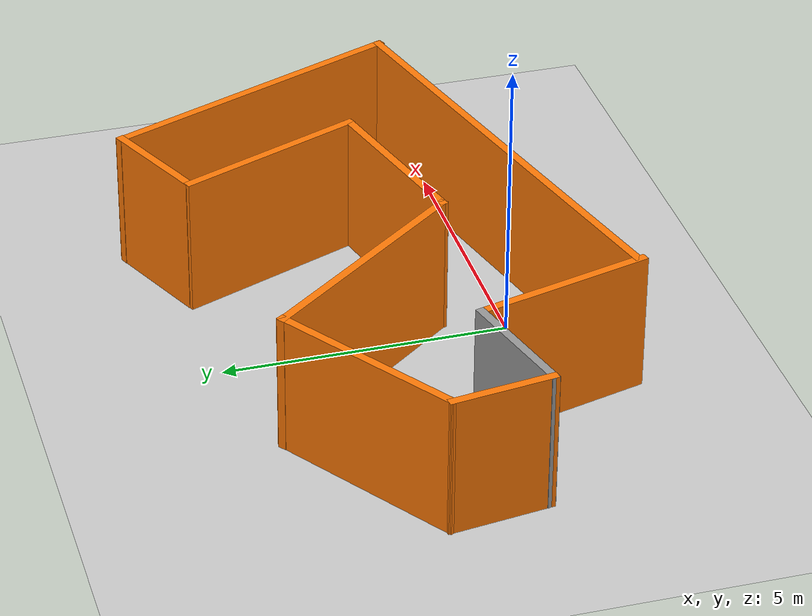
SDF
<sdf version="1.6">
 <world name="default">
  <light name="sun" type="directional">
   <pose>0 0 10 0 -0 0</pose>
   <diffuse>0.8 0.8 0.8 1</diffuse>
   <specular>0.2 0.2 0.2 1</specular>
   <attenuation>
    <range>1000</range>
    <constant>0.9</constant>
    <linear>0.01</linear>
    <quadratic>0.001</quadratic>
   </attenuation>
   <direction>-0.5 0.1 -0.9</direction>
  </light>
  <model name="ground_plane">
   <static>1</static>
   <link name="link">
    <collision name="collision">
     <geometry><plane><normal>0 0 1</normal><size>100 100</size></plane></geometry>
     <surface>
      <contact><collide_bitmask>65535</collide_bitmask></contact>
      <friction><ode><mu>100</mu><mu2>50</mu2></ode></friction>
     </surface>
    </collision>
    <visual name="visual">
     <cast_shadows>0</cast_shadows>
     <geometry><plane><normal>0 0 1</normal><size>100 100</size></plane></geometry>
     <material>
      <script><uri>file://media/materials/scripts/gazebo.material</uri><name>Gazebo/Grey</name></script>
     </material>
    </visual>
   </link>
  </model>
  <gravity>0 0 -9.8</gravity>
  <magnetic_field>6e-06 2.3e-05 -4.2e-05</magnetic_field>
  <atmosphere type="adiabatic"/>
  <physics name="default_physics" default="0" type="ode">
   <max_step_size>0.001</max_step_size>
   <real_time_factor>1</real_time_factor>
   <real_time_update_rate>1000</real_time_update_rate>
  </physics>
  <scene><ambient>0.4 0.4 0.4 1</ambient><background>0.7 0.7 0.7 1</background><shadows>1</shadows></scene>
  <spherical_coordinates>
   <surface_model>EARTH_WGS84</surface_model>
   <latitude_deg>0</latitude_deg>
   <longitude_deg>0</longitude_deg>
   <elevation>0</elevation>
   <heading_deg>0</heading_deg>
  </spherical_coordinates>
  <model name="irregular-4">
   <pose>0.373649 2.1018 0 0 -0 0</pose>
   <link name="Wall_0">
    <collision name="Wall_0_Collision">
     <geometry><box><size>8.49319 0.15 2.5</size></box></geometry>
     <pose>0 0 1.25 0 -0 0</pose>
    </collision>
    <visual name="Wall_0_Visual">
     <pose>0 0 1.25 0 -0 0</pose>
     <geometry><box><size>8.49319 0.15 2.5</size></box></geometry>
     <material>
      <script><uri>file://media/materials/scripts/gazebo.material</uri><name>Gazebo/Grey</name></script>
      <ambient>0.996078 0.47451 0.0196078 1</ambient>
     </material>
     <meta><layer>0</layer></meta>
    </visual>
    <pose>1.54137 -2.56125 0 0 0 -2.88286</pose>
   </link>
   <link name="Wall_10">
    <collision name="Wall_10_Collision">
     <geometry><box><size>4.52697 0.15 2.5</size></box></geometry>
     <pose>0 0 1.25 0 -0 0</pose>
    </collision>
    <visual name="Wall_10_Visual">
     <pose>0 0 1.25 0 -0 0</pose>
     <geometry><box><size>4.52697 0.15 2.5</size></box></geometry>
     <material>
      <script><uri>file://media/materials/scripts/gazebo.material</uri><name>Gazebo/Grey</name></script>
      <ambient>0.996078 0.47451 0.0196078 1</ambient>
     </material>
     <meta><layer>0</layer></meta>
    </visual>
    <pose>-1.3428 0.676329 0 0 0 -0.90678</pose>
   </link>
   <link name="Wall_12">
    <collision name="Wall_12_Collision">
     <geometry><box><size>3.6504 0.15 2.5</size></box></geometry>
     <pose>0 0 1.25 0 -0 0</pose>
    </collision>
    <visual name="Wall_12_Visual">
     <pose>0 0 1.25 0 -0 0</pose>
     <geometry><box><size>3.6504 0.15 2.5</size></box></geometry>
     <material>
      <script><uri>file://media/materials/scripts/gazebo.material</uri><name>Gazebo/Grey</name></script>
      <ambient>0.996078 0.47451 0.0196078 1</ambient>
     </material>
     <meta><layer>0</layer></meta>
    </visual>
    <pose>-4.12746 1.42472 0 0 0 -2.55067</pose>
   </link>
   <link name="Wall_13">
    <collision name="Wall_13_Collision">
     <geometry><box><size>1.8721 0.15 2.5</size></box></geometry>
     <pose>0 0 1.25 0 -0 0</pose>
    </collision>
    <visual name="Wall_13_Visual">
     <pose>0 0 1.25 0 -0 0</pose>
     <geometry><box><size>1.8721 0.15 2.5</size></box></geometry>
     <material>
      <script><uri>file://media/materials/scripts/gazebo.material</uri><name>Gazebo/Grey</name></script>
      <ambient>0.996078 0.47451 0.0196078 1</ambient>
     </material>
     <meta><layer>0</layer></meta>
    </visual>
    <pose>-5.46171 -0.403131 0 0 0 -1.43197</pose>
   </link>
   <link name="Wall_14">
    <collision name="Wall_14_Collision">
     <geometry><box><size>2.25 0.15 2.5</size></box></geometry>
     <pose>0 0 1.25 0 -0 0</pose>
    </collision>
    <visual name="Wall_14_Visual">
     <pose>0 0 1.25 0 -0 0</pose>
     <geometry><box><size>2.25 0.15 2.5</size></box></geometry>
     <material>
      <script><uri>file://media/materials/scripts/gazebo.material</uri><name>Gazebo/Grey</name></script>
      <ambient>1 1 1 1</ambient>
     </material>
     <meta><layer>0</layer></meta>
    </visual>
    <pose>-4.32834 -0.98414 0 0 -0 0.261799</pose>
   </link>
   <link name="Wall_15">
    <collision name="Wall_15_Collision">
     <geometry><box><size>3.25 0.15 2.5</size></box></geometry>
     <pose>0 0 1.25 0 -0 0</pose>
    </collision>
    <visual name="Wall_15_Visual">
     <pose>0 0 1.25 0 -0 0</pose>
     <geometry><box><size>3.25 0.15 2.5</size></box></geometry>
     <material>
      <script><uri>file://media/materials/scripts/gazebo.material</uri><name>Gazebo/Grey</name></script>
      <ambient>0.996078 0.47451 0.0196078 1</ambient>
     </material>
     <meta><layer>0</layer></meta>
    </visual>
    <pose>-2.91295 -2.20957 0 0 0 -1.309</pose>
   </link>
   <link name="Wall_2">
    <collision name="Wall_2_Collision">
     <geometry><box><size>5.76401 0.15 2.5</size></box></geometry>
     <pose>0 0 1.25 0 -0 0</pose>
    </collision>
    <visual name="Wall_2_Visual">
     <pose>0 0 1.25 0 -0 0</pose>
     <geometry><box><size>5.76401 0.15 2.5</size></box></geometry>
     <material>
      <script><uri>file://media/materials/scripts/gazebo.material</uri><name>Gazebo/Grey</name></script>
      <ambient>0.996078 0.47451 0.0196078 1</ambient>
     </material>
     <meta><layer>0</layer></meta>
    </visual>
    <pose>4.53779 1.09628 0 0 0 -1.18759</pose>
   </link>
   <link name="Wall_4">
    <collision name="Wall_4_Collision">
     <geometry><box><size>2.02169 0.15 2.5</size></box></geometry>
     <pose>0 0 1.25 0 -0 0</pose>
    </collision>
    <visual name="Wall_4_Visual">
     <pose>0 0 1.25 0 -0 0</pose>
     <geometry><box><size>2.02169 0.15 2.5</size></box></geometry>
     <material>
      <script><uri>file://media/materials/scripts/gazebo.material</uri><name>Gazebo/Grey</name></script>
      <ambient>0.996078 0.47451 0.0196078 1</ambient>
     </material>
     <meta><layer>0</layer></meta>
    </visual>
    <pose>2.64554 3.32131 0 0 -0 0.416231</pose>
   </link>
   <link name="Wall_6">
    <collision name="Wall_6_Collision">
     <geometry><box><size>3.54715 0.15 2.5</size></box></geometry>
     <pose>0 0 1.25 0 -0 0</pose>
    </collision>
    <visual name="Wall_6_Visual">
     <pose>0 0 1.25 0 -0 0</pose>
     <geometry><box><size>3.54715 0.15 2.5</size></box></geometry>
     <material>
      <script><uri>file://media/materials/scripts/gazebo.material</uri><name>Gazebo/Grey</name></script>
      <ambient>0.996078 0.47451 0.0196078 1</ambient>
     </material>
     <meta><layer>0</layer></meta>
    </visual>
    <pose>2.36188 1.32922 0 0 0 -1.18548</pose>
   </link>
   <link name="Wall_8">
    <collision name="Wall_8_Collision">
     <geometry><box><size>3.25 0.15 2.5</size></box></geometry>
     <pose>0 0 1.25 0 -0 0</pose>
    </collision>
    <visual name="Wall_8_Visual">
     <pose>0 0 1.25 0 -0 0</pose>
     <geometry><box><size>3.25 0.15 2.5</size></box></geometry>
     <material>
      <script><uri>file://media/materials/scripts/gazebo.material</uri><name>Gazebo/Grey</name></script>
      <ambient>0.996078 0.47451 0.0196078 1</ambient>
     </material>
     <meta><layer>0</layer></meta>
    </visual>
    <pose>1.50311 -0.645983 0 0 -0 0.261799</pose>
   </link>
   <static>1</static>
  </model>
 </world>
</sdf>
